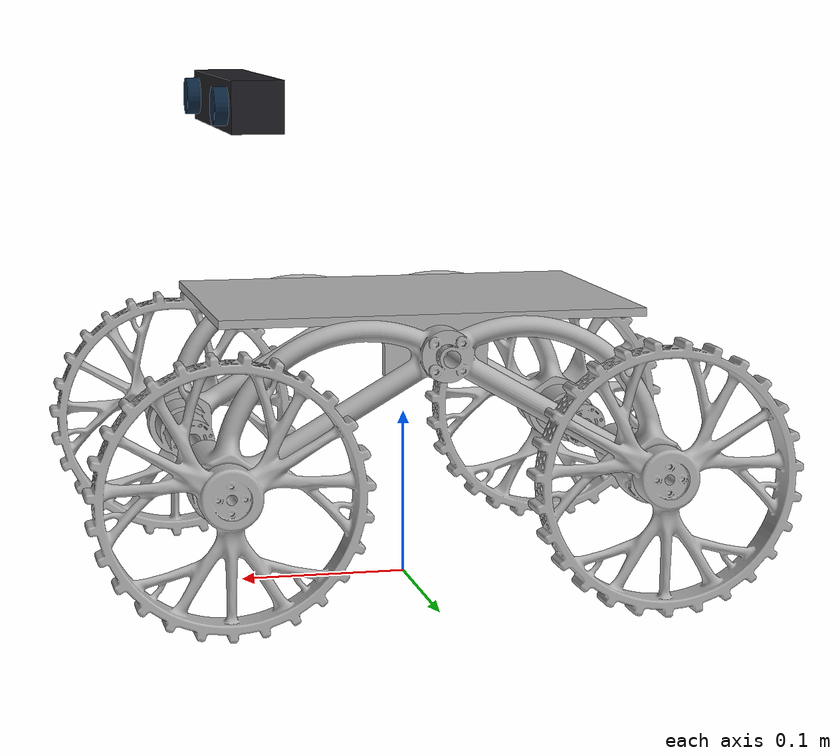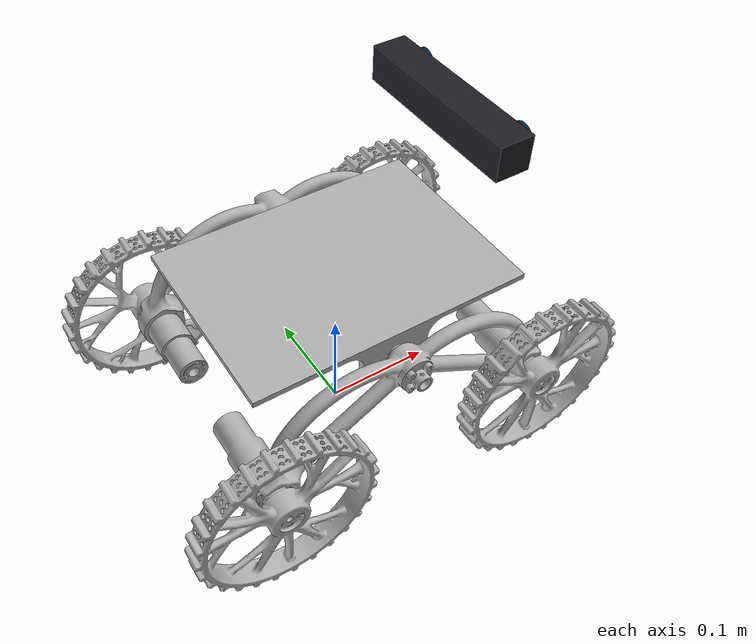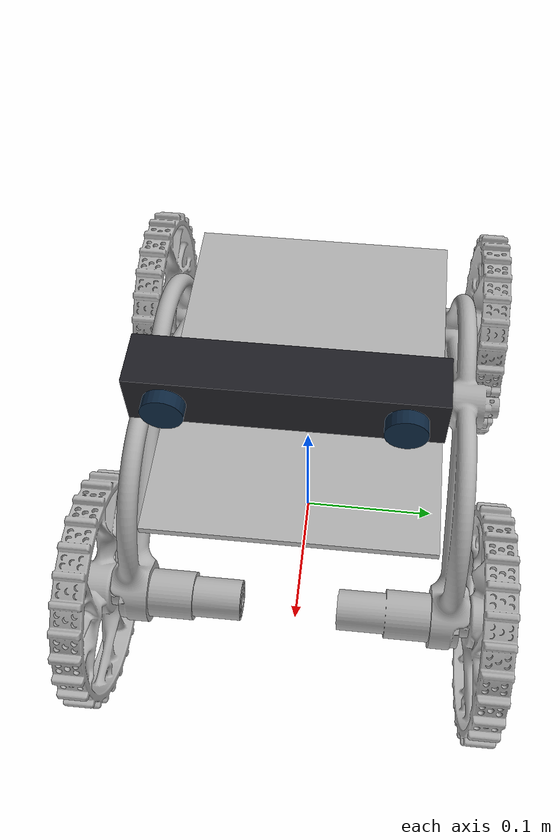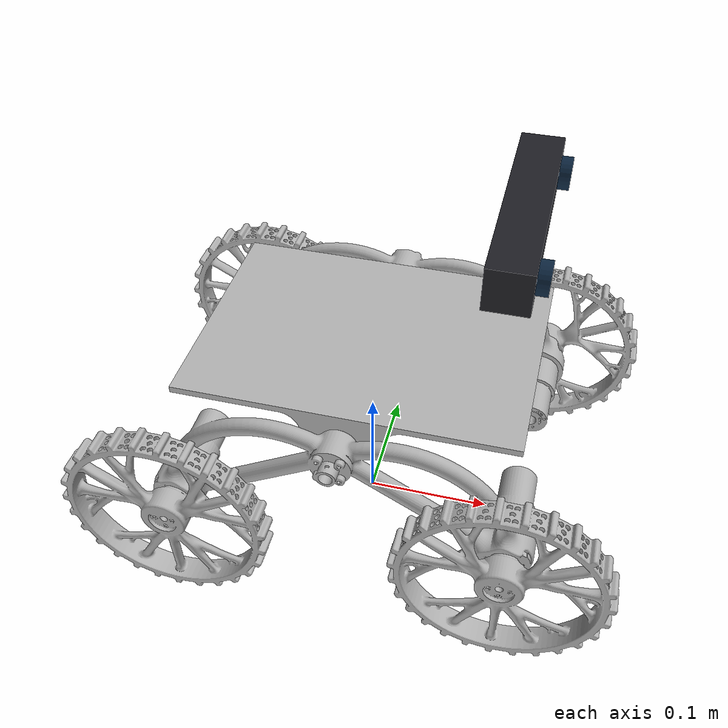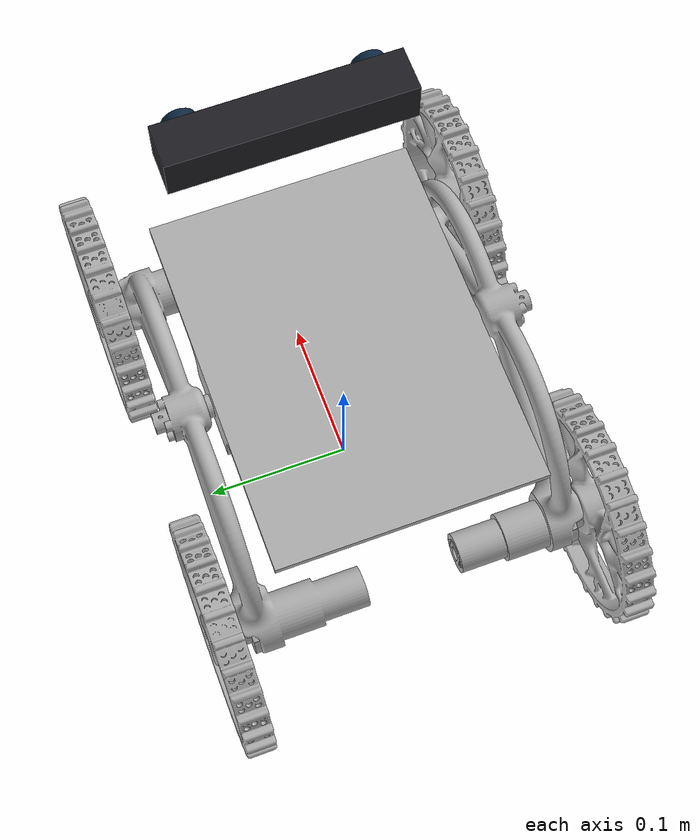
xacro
<?xml version="1.0" ?>
<robot name="lumos1_rockerless_URDF" xmlns:xacro="http://www.ros.org/wiki/xacro">

<!-- Override mesh_directory with a file:// URI for standalone generation. -->
<xacro:arg name="mesh_directory" default="package://lumos1_rockerless_URDF_description/meshes"/>
<xacro:include filename="materials.xacro" />
<xacro:include filename="lumos1_rockerless_URDF.gazebo" />
<xacro:include filename="stereo_camera.xacro" />
<!-- CAD forward is -Y. Rotate into ROS +X forward, +Y left, +Z up.
     The footprint lies at the bottom of the nominal 80 mm wheels. -->
<link name="base_footprint"/>
<joint name="base_footprint_joint" type="fixed">
  <parent link="base_footprint"/>
  <child link="base_link"/>
  <origin xyz="0 0 0.089941" rpy="0 0 1.5707963267948966"/>
</joint>
<link name="base_link">
  <inertial>
    <origin xyz="1.4209766093905305e-12 0.0007072894827953843 0.07585772026278519" rpy="0 0 0"/>
    <mass value="2.2954656039441095"/>
    <inertia ixx="0.009471" iyy="0.007188" izz="0.016369" ixy="-0.0" iyz="1.7e-05" ixz="0.0"/>
  </inertial>
  <visual>
    <origin xyz="0 0 0" rpy="0 0 0"/>
    <geometry>
      <mesh filename="$(arg mesh_directory)/base_link.stl" scale="0.001 0.001 0.001"/>
    </geometry>
    <material name="silver"/>
  </visual>
  <collision>
    <origin xyz="0 0 0" rpy="0 0 0"/>
    <geometry>
      <mesh filename="$(arg mesh_directory)/base_link.stl" scale="0.001 0.001 0.001"/>
    </geometry>
  </collision>
</link>

<link name="tire_rf_1">
  <inertial>
    <origin xyz="-0.016311940651014434 -2.9017535874142908e-09 -4.964814926410564e-05" rpy="0 0 0"/>
    <mass value="0.2702287984751716"/>
    <inertia ixx="0.000947" iyy="0.000482" izz="0.000481" ixy="-0.0" iyz="0.0" ixz="0.0"/>
  </inertial>
  <visual>
    <origin xyz="0.1126 0.125 0.009941" rpy="0 0 0"/>
    <geometry>
      <mesh filename="$(arg mesh_directory)/tire_rf_1.stl" scale="0.001 0.001 0.001"/>
    </geometry>
    <material name="silver"/>
  </visual>
  <!-- Smooth primitive contact avoids convex-hulling the 160k-triangle tread. -->
  <collision>
    <origin xyz="-0.0135 0 0" rpy="0 1.5707963267948966 0"/>
    <geometry><cylinder radius="0.08" length="0.027"/></geometry>
  </collision>
</link>

<link name="tire_rb_1">
  <inertial>
    <origin xyz="-0.016311940651014434 -2.901752990669415e-09 -4.964814926410564e-05" rpy="0 0 0"/>
    <mass value="0.2702287984751716"/>
    <inertia ixx="0.000947" iyy="0.000482" izz="0.000481" ixy="-0.0" iyz="0.0" ixz="0.0"/>
  </inertial>
  <visual>
    <origin xyz="0.1126 -0.125 0.009941" rpy="0 0 0"/>
    <geometry>
      <mesh filename="$(arg mesh_directory)/tire_rb_1.stl" scale="0.001 0.001 0.001"/>
    </geometry>
    <material name="silver"/>
  </visual>
  <!-- Smooth primitive contact avoids convex-hulling the 160k-triangle tread. -->
  <collision>
    <origin xyz="-0.0135 0 0" rpy="0 1.5707963267948966 0"/>
    <geometry><cylinder radius="0.08" length="0.027"/></geometry>
  </collision>
</link>

<link name="tire_lb_1">
  <inertial>
    <origin xyz="0.01631194065101438 2.9017532543473834e-09 -4.964814926422187e-05" rpy="0 0 0"/>
    <mass value="0.2702287984751716"/>
    <inertia ixx="0.000947" iyy="0.000482" izz="0.000481" ixy="-0.0" iyz="-0.0" ixz="-0.0"/>
  </inertial>
  <visual>
    <origin xyz="-0.1126 -0.125 0.009941" rpy="0 0 0"/>
    <geometry>
      <mesh filename="$(arg mesh_directory)/tire_lb_1.stl" scale="0.001 0.001 0.001"/>
    </geometry>
    <material name="silver"/>
  </visual>
  <!-- Smooth primitive contact avoids convex-hulling the 160k-triangle tread. -->
  <collision>
    <origin xyz="0.0135 0 0" rpy="0 1.5707963267948966 0"/>
    <geometry><cylinder radius="0.08" length="0.027"/></geometry>
  </collision>
</link>

<link name="tire_lf_1">
  <inertial>
    <origin xyz="0.01631194065101438 2.9017532543473834e-09 -4.964814926422534e-05" rpy="0 0 0"/>
    <mass value="0.2702287984751716"/>
    <inertia ixx="0.000947" iyy="0.000482" izz="0.000481" ixy="-0.0" iyz="-0.0" ixz="-0.0"/>
  </inertial>
  <visual>
    <origin xyz="-0.1126 0.125 0.009941" rpy="0 0 0"/>
    <geometry>
      <mesh filename="$(arg mesh_directory)/tire_lf_1.stl" scale="0.001 0.001 0.001"/>
    </geometry>
    <material name="silver"/>
  </visual>
  <!-- Smooth primitive contact avoids convex-hulling the 160k-triangle tread. -->
  <collision>
    <origin xyz="0.0135 0 0" rpy="0 1.5707963267948966 0"/>
    <geometry><cylinder radius="0.08" length="0.027"/></geometry>
  </collision>
</link>

<link name="rocker_L_1">
  <inertial>
    <origin xyz="-0.00206339111366248 1.2270970182147462e-06 -0.04808465960892697" rpy="0 0 0"/>
    <mass value="0.21047493788773886"/>
    <inertia ixx="0.00257" iyy="0.000322" izz="0.002451" ixy="-0.0" iyz="-0.0" ixz="-7.6e-05"/>
  </inertial>
  <visual>
    <origin xyz="-0.0936 0.0 -0.062228" rpy="0 0 0"/>
    <geometry>
      <mesh filename="$(arg mesh_directory)/rocker_L_1.stl" scale="0.001 0.001 0.001"/>
    </geometry>
    <material name="silver"/>
  </visual>
  <collision>
    <origin xyz="-0.0936 0.0 -0.062228" rpy="0 0 0"/>
    <geometry>
      <mesh filename="$(arg mesh_directory)/rocker_L_1.stl" scale="0.001 0.001 0.001"/>
    </geometry>
  </collision>
</link>

<link name="rocker_R_1">
  <inertial>
    <origin xyz="0.0020633911136624244 -1.227097018188722e-06 -0.0480846596089268" rpy="0 0 0"/>
    <mass value="0.21047493788773963"/>
    <inertia ixx="0.00257" iyy="0.000322" izz="0.002451" ixy="-0.0" iyz="0.0" ixz="7.6e-05"/>
  </inertial>
  <visual>
    <origin xyz="0.0936 0.0 -0.062228" rpy="0 0 0"/>
    <geometry>
      <mesh filename="$(arg mesh_directory)/rocker_R_1.stl" scale="0.001 0.001 0.001"/>
    </geometry>
    <material name="silver"/>
  </visual>
  <collision>
    <origin xyz="0.0936 0.0 -0.062228" rpy="0 0 0"/>
    <geometry>
      <mesh filename="$(arg mesh_directory)/rocker_R_1.stl" scale="0.001 0.001 0.001"/>
    </geometry>
  </collision>
</link>

<joint name="joint_rf" type="continuous">
  <origin xyz="-0.019 -0.125 -0.072169" rpy="0 0 0"/>
  <parent link="rocker_R_1"/>
  <child link="tire_rf_1"/>
  <axis xyz="1.0 0.0 0.0"/>
  <limit effort="0.5" velocity="8.0"/>
  <dynamics damping="0.002" friction="0.0"/>
</joint>

<joint name="joint_rb" type="continuous">
  <origin xyz="-0.019 0.125 -0.072169" rpy="0 0 0"/>
  <parent link="rocker_R_1"/>
  <child link="tire_rb_1"/>
  <axis xyz="1.0 0.0 0.0"/>
  <limit effort="0.5" velocity="8.0"/>
  <dynamics damping="0.002" friction="0.0"/>
</joint>

<joint name="joint_lb" type="continuous">
  <origin xyz="0.019 0.125 -0.072169" rpy="0 0 0"/>
  <parent link="rocker_L_1"/>
  <child link="tire_lb_1"/>
  <axis xyz="1.0 0.0 0.0"/>
  <limit effort="0.5" velocity="8.0"/>
  <dynamics damping="0.002" friction="0.0"/>
</joint>

<joint name="joint_lf" type="continuous">
  <origin xyz="0.019 -0.125 -0.072169" rpy="0 0 0"/>
  <parent link="rocker_L_1"/>
  <child link="tire_lf_1"/>
  <axis xyz="1.0 0.0 0.0"/>
  <limit effort="0.5" velocity="8.0"/>
  <dynamics damping="0.002" friction="0.0"/>
</joint>

<joint name="joint_rocker_l" type="fixed">
  <origin xyz="0.0936 0.0 0.062228" rpy="0 0 0"/>
  <parent link="base_link"/>
  <child link="rocker_L_1"/>
</joint>

<joint name="joint_rocker_r" type="fixed">
  <origin xyz="-0.0936 0.0 0.062228" rpy="0 0 0"/>
  <parent link="base_link"/>
  <child link="rocker_R_1"/>
</joint>

</robot>

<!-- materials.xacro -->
<robot name="lumos1_rockerless_URDF" xmlns:xacro="http://www.ros.org/wiki/xacro" >

<material name="silver">
  <color rgba="0.700 0.700 0.700 1.000"/>
</material>

</robot>

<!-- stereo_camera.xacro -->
<robot xmlns:xacro="http://www.ros.org/wiki/xacro">
  <!-- Parallel pinhole cameras: 120 mm baseline, 90 degree horizontal FOV.
       Keep physical offsets and the right projection matrix tied together. -->
  <xacro:property name="stereo_baseline" value="0.12"/>
  <xacro:property name="stereo_focal_length" value="320.0"/>

  <link name="stereo_camera_link">
    <inertial>
      <mass value="0.08"/>
      <inertia ixx="0.000176" ixy="0" ixz="0" iyy="0.000012" iyz="0" izz="0.000176"/>
    </inertial>
    <visual>
      <geometry><box size="0.03 0.16 0.03"/></geometry>
      <material name="stereo_housing"><color rgba="0.12 0.12 0.14 1"/></material>
    </visual>
    <collision><geometry><box size="0.03 0.16 0.03"/></geometry></collision>
  </link>
  <joint name="stereo_camera_joint" type="fixed">
    <parent link="base_link"/>
    <child link="stereo_camera_link"/>
    <!-- Undo the CAD yaw: camera +X is rover forward, +Y is left. -->
    <origin xyz="0 -0.10 0.20" rpy="0 0 ${-pi/2}"/>
  </joint>

  <xacro:macro name="stereo_eye" params="side offset baseline">
    <link name="stereo_${side}_camera_link">
      <visual>
        <origin xyz="-0.004 0 0" rpy="0 ${pi/2} 0"/>
        <geometry><cylinder radius="0.011" length="0.008"/></geometry>
        <material name="stereo_lens"><color rgba="0.05 0.15 0.25 1"/></material>
      </visual>
    </link>
    <joint name="stereo_${side}_camera_joint" type="fixed">
      <parent link="stereo_camera_link"/>
      <child link="stereo_${side}_camera_link"/>
      <origin xyz="0.023 ${offset} 0"/>
    </joint>
    <link name="stereo_${side}_optical_frame"/>
    <joint name="stereo_${side}_optical_joint" type="fixed">
      <parent link="stereo_${side}_camera_link"/>
      <child link="stereo_${side}_optical_frame"/>
      <!-- ROS optical: +Z forward, +X right, +Y down. -->
      <origin rpy="${-pi/2} 0 ${-pi/2}"/>
    </joint>
    <gazebo reference="stereo_${side}_camera_link">
      <sensor name="stereo_${side}" type="camera">
        <always_on>true</always_on>
        <update_rate>15</update_rate>
        <topic>/stereo/${side}/image_raw</topic>
        <gz_frame_id>stereo_${side}_optical_frame</gz_frame_id>
        <camera name="stereo_${side}">
          <camera_info_topic>/stereo/${side}/camera_info</camera_info_topic>
          <optical_frame_id>stereo_${side}_optical_frame</optical_frame_id>
          <horizontal_fov>${pi/2}</horizontal_fov>
          <image><width>640</width><height>480</height><format>R8G8B8</format></image>
          <clip><near>0.02</near><far>2000</far></clip>
          <lens>
            <intrinsics>
              <fx>${stereo_focal_length}</fx><fy>${stereo_focal_length}</fy>
              <cx>319.5</cx><cy>239.5</cy><s>0</s>
            </intrinsics>
            <projection>
              <p_fx>${stereo_focal_length}</p_fx><p_fy>${stereo_focal_length}</p_fy>
              <p_cx>319.5</p_cx><p_cy>239.5</p_cy>
              <tx>${-stereo_focal_length * baseline}</tx><ty>0</ty>
            </projection>
          </lens>
        </camera>
      </sensor>
    </gazebo>
  </xacro:macro>
  <xacro:stereo_eye side="left" offset="${stereo_baseline/2}" baseline="0"/>
  <xacro:stereo_eye side="right" offset="${-stereo_baseline/2}" baseline="${stereo_baseline}"/>
</robot>
